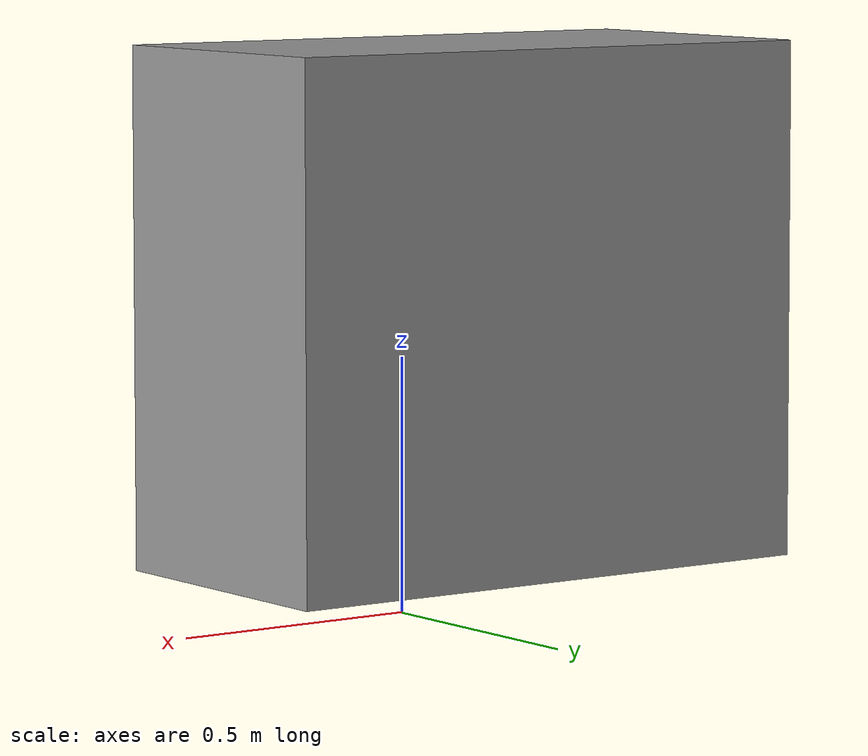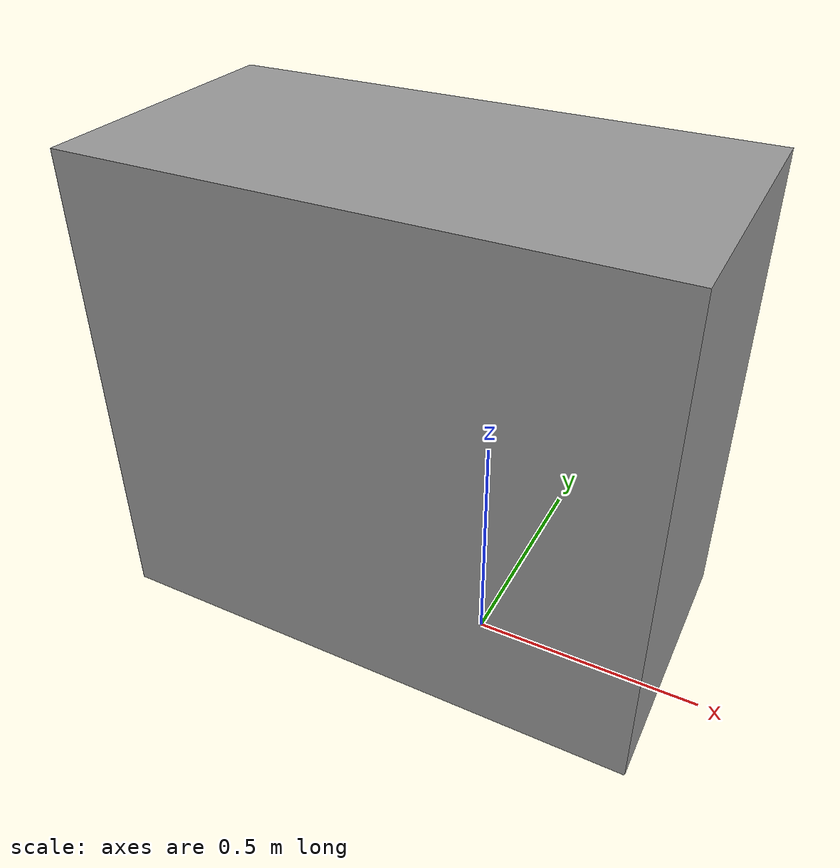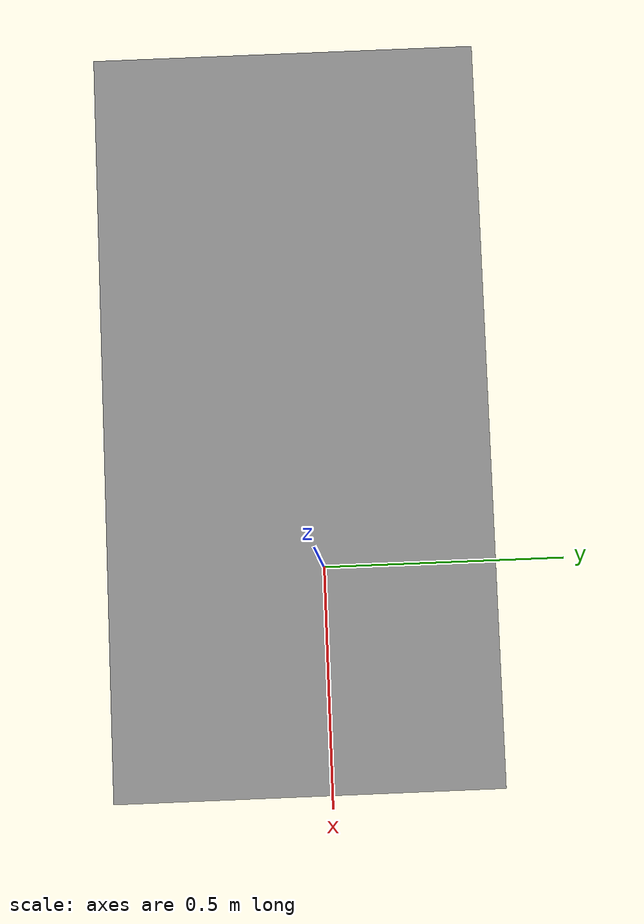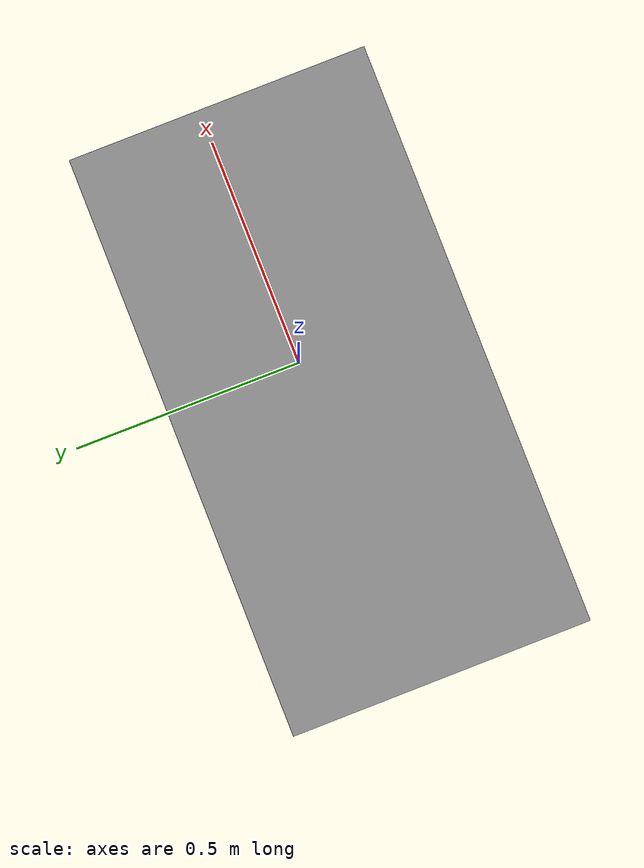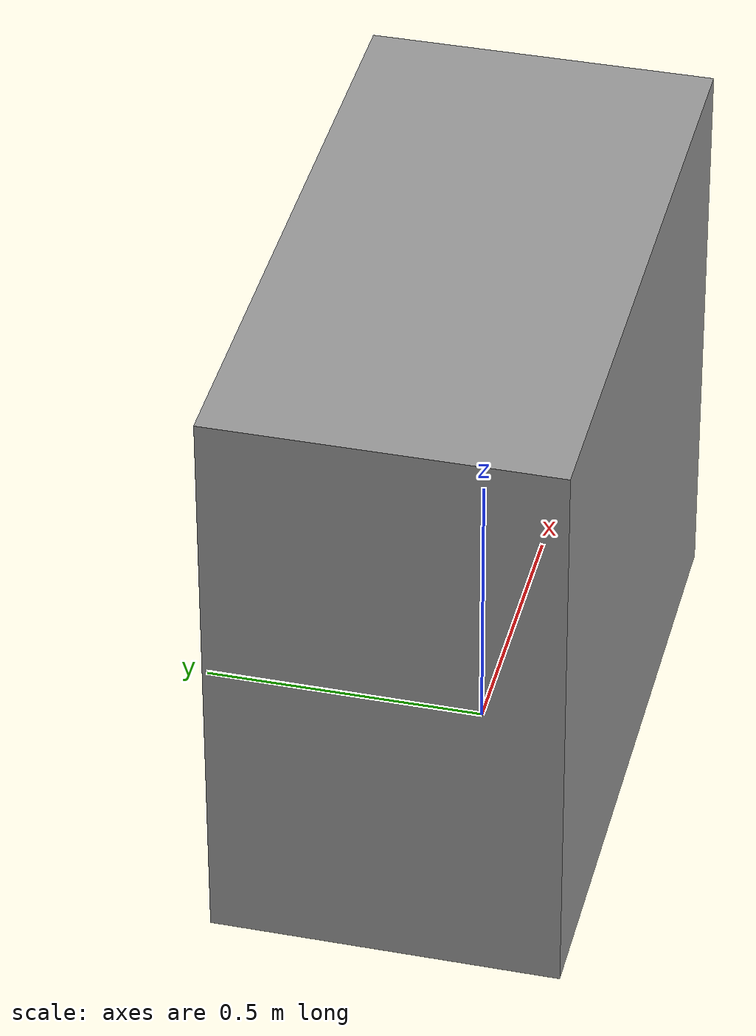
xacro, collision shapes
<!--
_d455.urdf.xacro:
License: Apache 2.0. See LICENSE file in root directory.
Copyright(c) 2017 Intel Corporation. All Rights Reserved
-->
<?xml version="1.0" ?>
<robot name="fw_rev_04" xmlns:xacro="http://ros.org/wiki/xacro">
  <xacro:property name="PI" value="3.1415926535897931"/>
  <xacro:property name="bodyHeight" value="1.02"/>
  <xacro:property name="bodyLength" value="1.15"/>
  <xacro:property name="bodyWidth" value="0.59"/>
  <xacro:property name="bodyMass" value="7.18"/>

  <xacro:arg name="use_nominal_extrinsics" default="true"/>
  <xacro:include filename="$(find fw_rev_04_description)/urdf/_d455.urdf.xacro" />
  <xacro:include filename="$(find fw_rev_04_description)/urdf/materials.xacro"/>

  <link name="base_footprint"/>

  <joint name="base_joint" type="fixed">
    <parent link="base_footprint"/>
    <child link="base_link" />
    <origin xyz="0 0 0.085" rpy="0 0 0"/>
  </joint>

  <link name="base_link">
    <visual>
      <origin xyz="0 0 0" rpy="0 0 0"/>
      <geometry>
        <mesh filename="package://fw_rev_04_description/meshes/bases/fw_rev_04.stl" scale="0.001 0.001 0.001"/>
      </geometry>
      <material name="grey"/>
    </visual>

    <collision>
      <origin xyz="-0.15 0 0.51" rpy="0 0 0"/>
      <geometry>
        <box size="${bodyLength} ${bodyWidth} ${bodyHeight}"/>
      </geometry>
      <material name="red"/>
    </collision>
  </link>

  <joint name="scan_joint" type="fixed">
    <parent link="base_link"/>
    <child link="base_scan"/>
    <origin xyz="0.032 0 0.245" rpy="0 0 ${PI}"/>
  </joint>

  <link name="base_scan">
  <visual>
    <origin xyz="0 0 0" rpy="-${PI/2} 0 0"/>
    <geometry>
      <mesh filename="package://fw_rev_04_description/meshes/sensors/rplidar_s2.stl" scale="0.001 0.001 0.001"/>
    </geometry>
    <material name="blue"/>
  </visual>
  <collision>
    <origin xyz="0.015 0 -0.0065" rpy="0 0 0"/>
    <geometry>
      <cylinder length="0.0315" radius="0.055"/>
    </geometry>
  </collision>
  <inertial>
    <mass value="0.114" />
    <origin xyz="0 0 0" />
    <inertia ixx="0.001" ixy="0.0" ixz="0.0"
             iyy="0.001" iyz="0.0"
             izz="0.001" />
  </inertial>
  </link>

  <xacro:sensor_d455 parent="base_link" name="d455_R" use_nominal_extrinsics="$(arg use_nominal_extrinsics)">
    <origin xyz="0.09 -0.07 0.22" rpy="0 -0.349066 -0.698132"/>
  </xacro:sensor_d455>

  <xacro:sensor_d455 parent="base_link" name="d455_L" use_nominal_extrinsics="$(arg use_nominal_extrinsics)">
    <origin xyz="0.09 0.07 0.22" rpy="0 -0.349066 0.698132"/>
  </xacro:sensor_d455>

</robot>

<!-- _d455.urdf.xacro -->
<robot name="sensor_d455" xmlns:xacro="http://ros.org/wiki/xacro">
  <!-- Includes -->
  <xacro:include filename="$(find fw_rev_04_description)/urdf/_materials.urdf.xacro" />
  <xacro:include filename="$(find fw_rev_04_description)/urdf/_usb_plug.urdf.xacro" />

  <xacro:macro name="sensor_d455" params="parent *origin name:=camera use_nominal_extrinsics:=false">
    <xacro:arg name="add_plug" default="false" />
    <xacro:property name="M_PI" value="3.1415926535897931" />

    <!-- The following values are approximate, and the camera node
     publishing TF values with actual calibrated camera extrinsic values -->
    <xacro:property name="d455_cam_depth_to_infra1_offset" value="0.0"/>
    <xacro:property name="d455_cam_depth_to_infra2_offset" value="-0.095"/>
    <xacro:property name="d455_cam_depth_to_color_offset" value="-0.059"/>

    <!-- The following values model the aluminum peripherial case for the
  	d455 camera, with the camera joint represented by the actual
  	peripherial camera tripod mount -->
    <xacro:property name="d455_cam_width" value="0.124"/>
    <xacro:property name="d455_cam_height" value="0.029"/>
    <xacro:property name="d455_cam_depth" value="0.026"/>
    <xacro:property name="d455_cam_mount_from_center_offset" value="0.0158"/>
    <!-- glass cover is 0.1 mm inwards from front aluminium plate -->
    <xacro:property name="d455_glass_to_front" value="0.1e-3"/>
    <!-- see datasheet Revision 009, Fig. 4-4 page 68 -->
    <xacro:property name="d455_zero_depth_to_glass" value="4.55e-3"/>
    <!-- convenience precomputation to avoid clutter-->
    <xacro:property name="d455_mesh_x_offset" value="${d455_cam_mount_from_center_offset-d455_glass_to_front-d455_zero_depth_to_glass}"/>

    <!-- The following offset is relative to the physical d455 camera peripherial
  	camera tripod mount -->
    <xacro:property name="d455_cam_depth_px" value="${d455_cam_mount_from_center_offset}"/>
    <xacro:property name="d455_cam_depth_py" value="0.0475"/>
    <xacro:property name="d455_cam_depth_pz" value="${d455_cam_height/2}"/>

    <!-- camera body, with origin at bottom screw mount -->
    <joint name="${name}_joint" type="fixed">
      <xacro:insert_block name="origin" />
      <parent link="${parent}"/>
      <child link="${name}_bottom_screw_frame" />
    </joint>
    <link name="${name}_bottom_screw_frame"/>

    <joint name="${name}_link_joint" type="fixed">
      <origin xyz="${d455_mesh_x_offset} ${d455_cam_depth_py} ${d455_cam_depth_pz}" rpy="0 0 0"/>
      <parent link="${name}_bottom_screw_frame"/>
      <child link="${name}_link" />
    </joint>

    <link name="${name}_link">
      <visual>
        <!-- the mesh origin is at front plate in between the two infrared camera axes -->
        <origin xyz="${d455_zero_depth_to_glass + d455_glass_to_front} ${-d455_cam_depth_py} 0" rpy="${M_PI/2} 0 ${M_PI/2}"/>
        <geometry>
	        <mesh filename="package://fw_rev_04_description/meshes/sensors/d455.stl" scale="0.001 0.001 0.001" />
        </geometry>
        <material name="aluminum"/>
      </visual>
      <collision>
        <origin xyz="${d455_zero_depth_to_glass-d455_cam_depth/2} ${-d455_cam_depth_py} 0" rpy="0 0 0"/>
        <geometry>
          <box size="${d455_cam_depth} ${d455_cam_width} ${d455_cam_height}"/>
        </geometry>
      </collision>
      <inertial>
        <!-- The following are not reliable values, and should not be used for modeling -->
        <mass value="0.072" />
        <origin xyz="0 0 0" />
        <inertia ixx="0.003881243" ixy="0.0" ixz="0.0" iyy="0.000498940" iyz="0.0" izz="0.003879257" />
      </inertial>
    </link>

    <!-- Use the nominal extrinsics between camera frames if the calibrated extrinsics aren't being published. e.g. running the device in simulation  -->
    <xacro:if value="${use_nominal_extrinsics}">
      <!-- camera depth joints and links -->
      <joint name="${name}_depth_joint" type="fixed">
        <origin xyz="0 0 0" rpy="0 0 0"/>
        <parent link="${name}_link"/>
        <child link="${name}_depth_frame" />
      </joint>
      <link name="${name}_depth_frame"/>

      <joint name="${name}_depth_optical_joint" type="fixed">
        <origin xyz="0 0 0" rpy="${-M_PI/2} 0 ${-M_PI/2}" />
        <parent link="${name}_depth_frame" />
        <child link="${name}_depth_optical_frame" />
      </joint>
      <link name="${name}_depth_optical_frame"/>

      <!-- camera left IR joints and links -->
      <joint name="${name}_infra1_joint" type="fixed">
        <origin xyz="0 ${d455_cam_depth_to_infra1_offset} 0" rpy="0 0 0" />
        <parent link="${name}_link" />
        <child link="${name}_infra1_frame" />
      </joint>
      <link name="${name}_infra1_frame"/>

      <joint name="${name}_infra1_optical_joint" type="fixed">
        <origin xyz="0 0 0" rpy="${-M_PI/2} 0 ${-M_PI/2}" />
        <parent link="${name}_infra1_frame" />
        <child link="${name}_infra1_optical_frame" />
      </joint>
      <link name="${name}_infra1_optical_frame"/>

      <!-- camera right IR joints and links -->
      <joint name="${name}_infra2_joint" type="fixed">
        <origin xyz="0 ${d455_cam_depth_to_infra2_offset} 0" rpy="0 0 0" />
        <parent link="${name}_link" />
        <child link="${name}_infra2_frame" />
      </joint>
      <link name="${name}_infra2_frame"/>

      <joint name="${name}_infra2_optical_joint" type="fixed">
        <origin xyz="0 0 0" rpy="${-M_PI/2} 0 ${-M_PI/2}" />
        <parent link="${name}_infra2_frame" />
        <child link="${name}_infra2_optical_frame" />
      </joint>
      <link name="${name}_infra2_optical_frame"/>

      <!-- camera color joints and links -->
      <joint name="${name}_color_joint" type="fixed">
        <origin xyz="0 ${d455_cam_depth_to_color_offset} 0" rpy="0 0 0" />
        <parent link="${name}_link" />
        <child link="${name}_color_frame" />
      </joint>
      <link name="${name}_color_frame"/>

      <joint name="${name}_color_optical_joint" type="fixed">
        <origin xyz="0 0 0" rpy="${-M_PI/2} 0 ${-M_PI/2}" />
        <parent link="${name}_color_frame" />
        <child link="${name}_color_optical_frame" />
      </joint>
      <link name="${name}_color_optical_frame"/>

      <!-- IMU -->
      <!-- see datasheet Revision 009, page 114 -->
      <xacro:property name="d455_imu_px" value="-0.01602"/>
      <xacro:property name="d455_imu_py" value="-0.03022"/>
      <xacro:property name="d455_imu_pz" value="+0.0074"/>

      <link name="${name}_accel_frame" />
      <link name="${name}_accel_optical_frame" />
      <link name="${name}_gyro_frame" />
      <link name="${name}_gyro_optical_frame" />
      <link name="${name}_imu_optical_frame" />

      <joint name="${name}_accel_joint" type="fixed">
        <origin xyz = "${d455_imu_px} ${d455_imu_py} ${d455_imu_pz}" rpy = "0 0 0" />
        <parent link="${name}_link" />
        <child link="${name}_accel_frame" />
      </joint>

      <joint name="${name}_accel_optical_joint" type="fixed">
        <origin xyz = "0 0 0" rpy = "${-M_PI/2} 0 ${-M_PI/2}" />
        <parent link="${name}_accel_frame" />
        <child link="${name}_accel_optical_frame" />
      </joint>

      <joint name="${name}_gyro_joint" type="fixed">
        <origin xyz = "${d455_imu_px} ${d455_imu_py} ${d455_imu_pz}" rpy = "0 0 0" />
        <parent link="${name}_link" />
        <child link="${name}_gyro_frame" />
      </joint>

      <joint name="${name}_gyro_optical_joint" type="fixed">
        <origin xyz = "0 0 0" rpy = "${-M_PI/2} 0 ${-M_PI/2}" />
        <parent link="${name}_gyro_frame" />
        <child link="${name}_gyro_optical_frame" />
      </joint>

      <joint name="${name}_imu_optical_joint" type="fixed">
        <origin xyz = "0 0 0" rpy = "0 0 0" />
        <parent link="${name}_gyro_optical_frame" />
        <child link="${name}_imu_optical_frame" />
      </joint>
    </xacro:if>

    <xacro:if value="$(arg add_plug)">
      <xacro:usb_plug parent="${name}_link" name="${name}_usb_plug">
        <origin xyz="${-0.00406-d455_cam_depth_px} ${-0.03701-d455_cam_depth_py} ${-d455_cam_depth_pz}" rpy="${M_PI/2} 0 0"/>
      </xacro:usb_plug>
    </xacro:if>
  </xacro:macro>
</robot>
